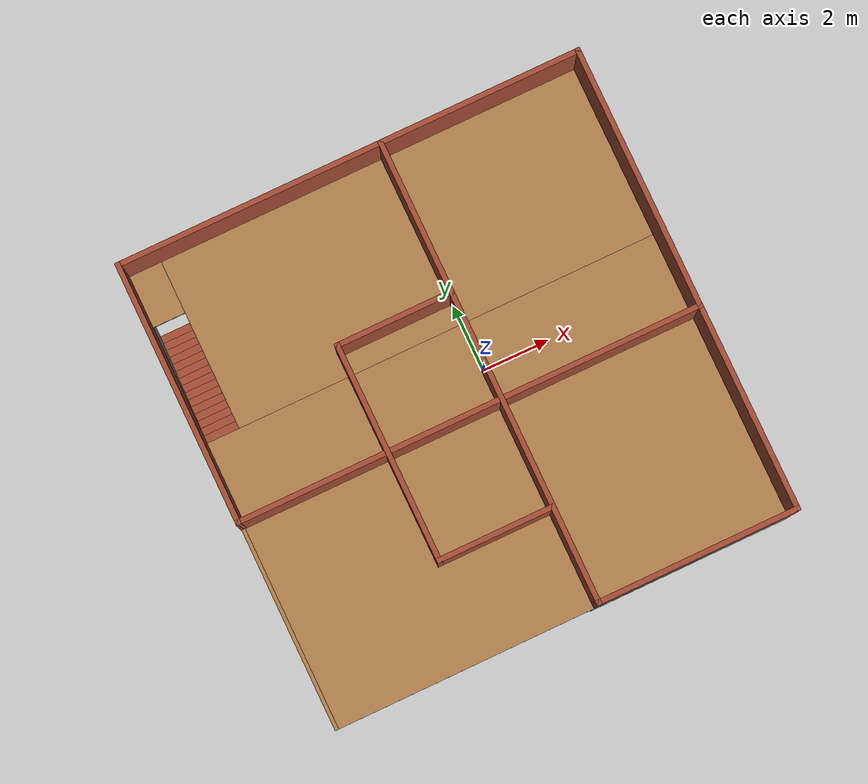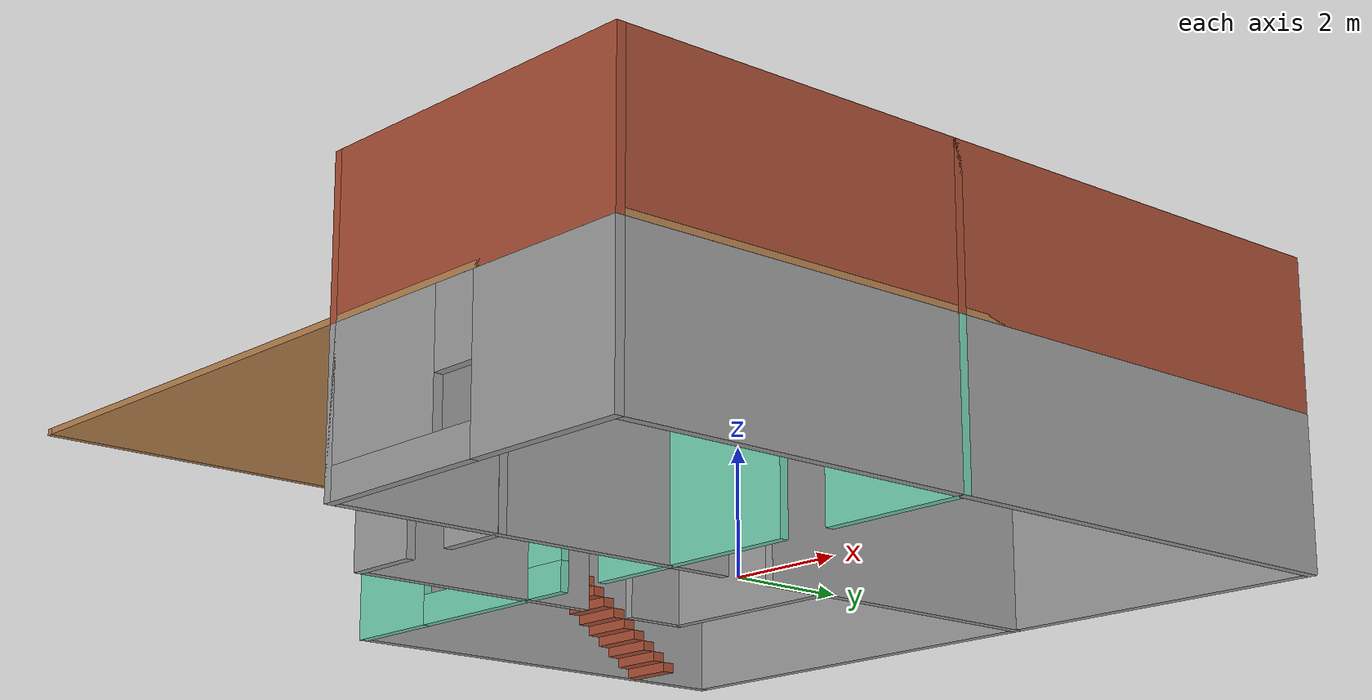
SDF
<?xml version='1.0'?>
<sdf version='1.6'>
  <model name='Robot_house'>
    <pose frame=''>-1.05504 -0.480919 0 0 -0 0</pose>
    <link name='Floor_3'>
      <pose frame=''>3.8e-05 -8.1e-05 2.5 0 -0 0</pose>
      <visual name='Floor_3_Visual_0'>
        <pose frame=''>-6.8208 0 0.05 0 -0 0</pose>
        <geometry>
          <box>
            <size>0.108402 13.75 0.1</size>
          </box>
        </geometry>
        <material>
          <script>
            <uri>file://media/materials/scripts/gazebo.material</uri>
            <name>Gazebo/Wood</name>
          </script>
          <ambient>1 1 1 1</ambient>
        </material>
      </visual>
      <collision name='Floor_3_Collision_0'>
        <geometry>
          <box>
            <size>0.108402 13.75 0.1</size>
          </box>
        </geometry>
        <pose frame=''>-6.8208 0 0.05 0 -0 0</pose>
      </collision>
      <visual name='Floor_3_Visual_1'>
        <pose frame=''>0.054201 -2.59933 0.05 0 -0 0</pose>
        <geometry>
          <box>
            <size>13.6416 8.55134 0.1</size>
          </box>
        </geometry>
        <material>
          <script>
            <uri>file://media/materials/scripts/gazebo.material</uri>
            <name>Gazebo/Wood</name>
          </script>
          <ambient>1 1 1 1</ambient>
        </material>
      </visual>
      <collision name='Floor_3_Collision_1'>
        <geometry>
          <box>
            <size>13.6416 8.55134 0.1</size>
          </box>
        </geometry>
        <pose frame=''>0.054201 -2.59933 0.05 0 -0 0</pose>
      </collision>
      <visual name='Floor_3_Visual_2'>
        <pose frame=''>0.554201 4.27567 0.05 0 -0 0</pose>
        <geometry>
          <box>
            <size>12.6416 5.19865 0.1</size>
          </box>
        </geometry>
        <material>
          <script>
            <uri>file://media/materials/scripts/gazebo.material</uri>
            <name>Gazebo/Wood</name>
          </script>
          <ambient>1 1 1 1</ambient>
        </material>
      </visual>
      <collision name='Floor_3_Collision_2'>
        <geometry>
          <box>
            <size>12.6416 5.19865 0.1</size>
          </box>
        </geometry>
        <pose frame=''>0.554201 4.27567 0.05 0 -0 0</pose>
      </collision>
      <visual name='Floor_3_Visual_3'>
        <pose frame=''>-6.2666 6.02567 0.05 0 -0 0</pose>
        <geometry>
          <box>
            <size>1 1.69866 0.1</size>
          </box>
        </geometry>
        <material>
          <script>
            <uri>file://media/materials/scripts/gazebo.material</uri>
            <name>Gazebo/Wood</name>
          </script>
          <ambient>1 1 1 1</ambient>
        </material>
      </visual>
      <collision name='Floor_3_Collision_3'>
        <geometry>
          <box>
            <size>1 1.69866 0.1</size>
          </box>
        </geometry>
        <pose frame=''>-6.2666 6.02567 0.05 0 -0 0</pose>
      </collision>
    </link>
    <link name='Stairs_1'>
      <visual name='Stairs_1_Visual_0'>
        <pose frame=''>-6.26656 5.0596 0.083333 0 -0 0</pose>
        <geometry>
          <box>
            <size>1 0.233333 0.166667</size>
          </box>
        </geometry>
        <material>
          <script>
            <uri>file://media/materials/scripts/gazebo.material</uri>
            <name>Gazebo/Bricks</name>
          </script>
          <ambient>1 1 1 1</ambient>
        </material>
      </visual>
      <collision name='Stairs_1_Collision_0'>
        <geometry>
          <box>
            <size>1 0.233333 0.166667</size>
          </box>
        </geometry>
        <pose frame=''>-6.26656 5.0596 0.083333 0 -0 0</pose>
      </collision>
      <visual name='Stairs_1_Visual_1'>
        <pose frame=''>-6.26656 4.82626 0.25 0 -0 0</pose>
        <geometry>
          <box>
            <size>1 0.233333 0.166667</size>
          </box>
        </geometry>
        <material>
          <script>
            <uri>file://media/materials/scripts/gazebo.material</uri>
            <name>Gazebo/Bricks</name>
          </script>
          <ambient>1 1 1 1</ambient>
        </material>
      </visual>
      <collision name='Stairs_1_Collision_1'>
        <geometry>
          <box>
            <size>1 0.233333 0.166667</size>
          </box>
        </geometry>
        <pose frame=''>-6.26656 4.82626 0.25 0 -0 0</pose>
      </collision>
      <visual name='Stairs_1_Visual_2'>
        <pose frame=''>-6.26656 4.59293 0.416667 0 -0 0</pose>
        <geometry>
          <box>
            <size>1 0.233333 0.166667</size>
          </box>
        </geometry>
        <material>
          <script>
            <uri>file://media/materials/scripts/gazebo.material</uri>
            <name>Gazebo/Bricks</name>
          </script>
          <ambient>1 1 1 1</ambient>
        </material>
      </visual>
      <collision name='Stairs_1_Collision_2'>
        <geometry>
          <box>
            <size>1 0.233333 0.166667</size>
          </box>
        </geometry>
        <pose frame=''>-6.26656 4.59293 0.416667 0 -0 0</pose>
      </collision>
      <visual name='Stairs_1_Visual_3'>
        <pose frame=''>-6.26656 4.3596 0.583333 0 -0 0</pose>
        <geometry>
          <box>
            <size>1 0.233333 0.166667</size>
          </box>
        </geometry>
        <material>
          <script>
            <uri>file://media/materials/scripts/gazebo.material</uri>
            <name>Gazebo/Bricks</name>
          </script>
          <ambient>1 1 1 1</ambient>
        </material>
      </visual>
      <collision name='Stairs_1_Collision_3'>
        <geometry>
          <box>
            <size>1 0.233333 0.166667</size>
          </box>
        </geometry>
        <pose frame=''>-6.26656 4.3596 0.583333 0 -0 0</pose>
      </collision>
      <visual name='Stairs_1_Visual_4'>
        <pose frame=''>-6.26656 4.12626 0.75 0 -0 0</pose>
        <geometry>
          <box>
            <size>1 0.233333 0.166667</size>
          </box>
        </geometry>
        <material>
          <script>
            <uri>file://media/materials/scripts/gazebo.material</uri>
            <name>Gazebo/Bricks</name>
          </script>
          <ambient>1 1 1 1</ambient>
        </material>
      </visual>
      <collision name='Stairs_1_Collision_4'>
        <geometry>
          <box>
            <size>1 0.233333 0.166667</size>
          </box>
        </geometry>
        <pose frame=''>-6.26656 4.12626 0.75 0 -0 0</pose>
      </collision>
      <visual name='Stairs_1_Visual_5'>
        <pose frame=''>-6.26656 3.89293 0.916667 0 -0 0</pose>
        <geometry>
          <box>
            <size>1 0.233333 0.166667</size>
          </box>
        </geometry>
        <material>
          <script>
            <uri>file://media/materials/scripts/gazebo.material</uri>
            <name>Gazebo/Bricks</name>
          </script>
          <ambient>1 1 1 1</ambient>
        </material>
      </visual>
      <collision name='Stairs_1_Collision_5'>
        <geometry>
          <box>
            <size>1 0.233333 0.166667</size>
          </box>
        </geometry>
        <pose frame=''>-6.26656 3.89293 0.916667 0 -0 0</pose>
      </collision>
      <visual name='Stairs_1_Visual_6'>
        <pose frame=''>-6.26656 3.6596 1.08333 0 -0 0</pose>
        <geometry>
          <box>
            <size>1 0.233333 0.166667</size>
          </box>
        </geometry>
        <material>
          <script>
            <uri>file://media/materials/scripts/gazebo.material</uri>
            <name>Gazebo/Bricks</name>
          </script>
          <ambient>1 1 1 1</ambient>
        </material>
      </visual>
      <collision name='Stairs_1_Collision_6'>
        <geometry>
          <box>
            <size>1 0.233333 0.166667</size>
          </box>
        </geometry>
        <pose frame=''>-6.26656 3.6596 1.08333 0 -0 0</pose>
      </collision>
      <visual name='Stairs_1_Visual_7'>
        <pose frame=''>-6.26656 3.42626 1.25 0 -0 0</pose>
        <geometry>
          <box>
            <size>1 0.233333 0.166667</size>
          </box>
        </geometry>
        <material>
          <script>
            <uri>file://media/materials/scripts/gazebo.material</uri>
            <name>Gazebo/Bricks</name>
          </script>
          <ambient>1 1 1 1</ambient>
        </material>
      </visual>
      <collision name='Stairs_1_Collision_7'>
        <geometry>
          <box>
            <size>1 0.233333 0.166667</size>
          </box>
        </geometry>
        <pose frame=''>-6.26656 3.42626 1.25 0 -0 0</pose>
      </collision>
      <visual name='Stairs_1_Visual_8'>
        <pose frame=''>-6.26656 3.19293 1.41667 0 -0 0</pose>
        <geometry>
          <box>
            <size>1 0.233333 0.166667</size>
          </box>
        </geometry>
        <material>
          <script>
            <uri>file://media/materials/scripts/gazebo.material</uri>
            <name>Gazebo/Bricks</name>
          </script>
          <ambient>1 1 1 1</ambient>
        </material>
      </visual>
      <collision name='Stairs_1_Collision_8'>
        <geometry>
          <box>
            <size>1 0.233333 0.166667</size>
          </box>
        </geometry>
        <pose frame=''>-6.26656 3.19293 1.41667 0 -0 0</pose>
      </collision>
      <visual name='Stairs_1_Visual_9'>
        <pose frame=''>-6.26656 2.9596 1.58333 0 -0 0</pose>
        <geometry>
          <box>
            <size>1 0.233333 0.166667</size>
          </box>
        </geometry>
        <material>
          <script>
            <uri>file://media/materials/scripts/gazebo.material</uri>
            <name>Gazebo/Bricks</name>
          </script>
          <ambient>1 1 1 1</ambient>
        </material>
      </visual>
      <collision name='Stairs_1_Collision_9'>
        <geometry>
          <box>
            <size>1 0.233333 0.166667</size>
          </box>
        </geometry>
        <pose frame=''>-6.26656 2.9596 1.58333 0 -0 0</pose>
      </collision>
      <visual name='Stairs_1_Visual_10'>
        <pose frame=''>-6.26656 2.72626 1.75 0 -0 0</pose>
        <geometry>
          <box>
            <size>1 0.233333 0.166667</size>
          </box>
        </geometry>
        <material>
          <script>
            <uri>file://media/materials/scripts/gazebo.material</uri>
            <name>Gazebo/Bricks</name>
          </script>
          <ambient>1 1 1 1</ambient>
        </material>
      </visual>
      <collision name='Stairs_1_Collision_10'>
        <geometry>
          <box>
            <size>1 0.233333 0.166667</size>
          </box>
        </geometry>
        <pose frame=''>-6.26656 2.72626 1.75 0 -0 0</pose>
      </collision>
      <visual name='Stairs_1_Visual_11'>
        <pose frame=''>-6.26656 2.49293 1.91667 0 -0 0</pose>
        <geometry>
          <box>
            <size>1 0.233333 0.166667</size>
          </box>
        </geometry>
        <material>
          <script>
            <uri>file://media/materials/scripts/gazebo.material</uri>
            <name>Gazebo/Bricks</name>
          </script>
          <ambient>1 1 1 1</ambient>
        </material>
      </visual>
      <collision name='Stairs_1_Collision_11'>
        <geometry>
          <box>
            <size>1 0.233333 0.166667</size>
          </box>
        </geometry>
        <pose frame=''>-6.26656 2.49293 1.91667 0 -0 0</pose>
      </collision>
      <visual name='Stairs_1_Visual_12'>
        <pose frame=''>-6.26656 2.2596 2.08333 0 -0 0</pose>
        <geometry>
          <box>
            <size>1 0.233333 0.166667</size>
          </box>
        </geometry>
        <material>
          <script>
            <uri>file://media/materials/scripts/gazebo.material</uri>
            <name>Gazebo/Bricks</name>
          </script>
          <ambient>1 1 1 1</ambient>
        </material>
      </visual>
      <collision name='Stairs_1_Collision_12'>
        <geometry>
          <box>
            <size>1 0.233333 0.166667</size>
          </box>
        </geometry>
        <pose frame=''>-6.26656 2.2596 2.08333 0 -0 0</pose>
      </collision>
      <visual name='Stairs_1_Visual_13'>
        <pose frame=''>-6.26656 2.02626 2.25 0 -0 0</pose>
        <geometry>
          <box>
            <size>1 0.233333 0.166667</size>
          </box>
        </geometry>
        <material>
          <script>
            <uri>file://media/materials/scripts/gazebo.material</uri>
            <name>Gazebo/Bricks</name>
          </script>
          <ambient>1 1 1 1</ambient>
        </material>
      </visual>
      <collision name='Stairs_1_Collision_13'>
        <geometry>
          <box>
            <size>1 0.233333 0.166667</size>
          </box>
        </geometry>
        <pose frame=''>-6.26656 2.02626 2.25 0 -0 0</pose>
      </collision>
      <visual name='Stairs_1_Visual_14'>
        <pose frame=''>-6.26656 1.79293 2.41667 0 -0 0</pose>
        <geometry>
          <box>
            <size>1 0.233333 0.166667</size>
          </box>
        </geometry>
        <material>
          <script>
            <uri>file://media/materials/scripts/gazebo.material</uri>
            <name>Gazebo/Bricks</name>
          </script>
          <ambient>1 1 1 1</ambient>
        </material>
      </visual>
      <collision name='Stairs_1_Collision_14'>
        <geometry>
          <box>
            <size>1 0.233333 0.166667</size>
          </box>
        </geometry>
        <pose frame=''>-6.26656 1.79293 2.41667 0 -0 0</pose>
      </collision>
    </link>
    <link name='Wall_0'>
      <collision name='Wall_0_Collision'>
        <geometry>
          <box>
            <size>13.75 0.15 2.5</size>
          </box>
        </geometry>
        <pose frame=''>0 0 1.25 0 -0 0</pose>
      </collision>
      <visual name='Wall_0_Visual'>
        <pose frame=''>0 0 1.25 0 -0 0</pose>
        <geometry>
          <box>
            <size>13.75 0.15 2.5</size>
          </box>
        </geometry>
        <material>
          <script>
            <uri>file://media/materials/scripts/gazebo.material</uri>
            <name>Gazebo/Grey</name>
          </script>
          <ambient>1 1 1 1</ambient>
        </material>
      </visual>
      <pose frame=''>-3.8e-05 6.80008 0 0 -0 0</pose>
    </link>
    <link name='Wall_1'>
      <collision name='Wall_1_Collision'>
        <geometry>
          <box>
            <size>13.75 0.15 2.5</size>
          </box>
        </geometry>
        <pose frame=''>0 0 1.25 0 -0 0</pose>
      </collision>
      <visual name='Wall_1_Visual'>
        <pose frame=''>0 0 1.25 0 -0 0</pose>
        <geometry>
          <box>
            <size>13.75 0.15 2.5</size>
          </box>
        </geometry>
        <material>
          <script>
            <uri>file://media/materials/scripts/gazebo.material</uri>
            <name>Gazebo/Grey</name>
          </script>
          <ambient>1 1 1 1</ambient>
        </material>
      </visual>
      <pose frame=''>6.79996 8.1e-05 0 0 0 -1.5708</pose>
    </link>
    <link name='Wall_10'>
      <pose frame=''>-0.721411 -3.98743 0 0 -0 0</pose>
      <visual name='Wall_10_Visual_0'>
        <pose frame=''>-1.08443 0 1.25 0 -0 0</pose>
        <geometry>
          <box>
            <size>1.33115 0.15 2.5</size>
          </box>
        </geometry>
        <material>
          <script>
            <uri>file://media/materials/scripts/gazebo.material</uri>
            <name>Gazebo/Grey</name>
          </script>
          <ambient>1 1 1 1</ambient>
        </material>
      </visual>
      <collision name='Wall_10_Collision_0'>
        <geometry>
          <box>
            <size>1.33115 0.15 2.5</size>
          </box>
        </geometry>
        <pose frame=''>-1.08443 0 1.25 0 -0 0</pose>
      </collision>
      <visual name='Wall_10_Visual_1'>
        <pose frame=''>1.11557 0 1.25 0 -0 0</pose>
        <geometry>
          <box>
            <size>1.26885 0.15 2.5</size>
          </box>
        </geometry>
        <material>
          <script>
            <uri>file://media/materials/scripts/gazebo.material</uri>
            <name>Gazebo/Grey</name>
          </script>
          <ambient>1 1 1 1</ambient>
        </material>
      </visual>
      <collision name='Wall_10_Collision_1'>
        <geometry>
          <box>
            <size>1.26885 0.15 2.5</size>
          </box>
        </geometry>
        <pose frame=''>1.11557 0 1.25 0 -0 0</pose>
      </collision>
      <visual name='Wall_10_Visual_2'>
        <pose frame=''>0.031147 0 2.25 0 -0 0</pose>
        <geometry>
          <box>
            <size>0.9 0.15 0.5</size>
          </box>
        </geometry>
        <material>
          <script>
            <uri>file://media/materials/scripts/gazebo.material</uri>
            <name>Gazebo/Grey</name>
          </script>
          <ambient>1 1 1 1</ambient>
        </material>
      </visual>
      <collision name='Wall_10_Collision_2'>
        <geometry>
          <box>
            <size>0.9 0.15 0.5</size>
          </box>
        </geometry>
        <pose frame=''>0.031147 0 2.25 0 -0 0</pose>
      </collision>
    </link>
    <link name='Wall_2'>
      <pose frame=''>3.87496 -6.79992 0 0 -0 3.14159</pose>
      <visual name='Wall_2_Visual_0'>
        <pose frame=''>-1.60068 0 1.25 0 -0 0</pose>
        <geometry>
          <box>
            <size>2.79864 0.15 2.5</size>
          </box>
        </geometry>
        <material>
          <script>
            <uri>file://media/materials/scripts/gazebo.material</uri>
            <name>Gazebo/Grey</name>
          </script>
          <ambient>1 1 1 1</ambient>
        </material>
      </visual>
      <collision name='Wall_2_Collision_0'>
        <geometry>
          <box>
            <size>2.79864 0.15 2.5</size>
          </box>
        </geometry>
        <pose frame=''>-1.60068 0 1.25 0 -0 0</pose>
      </collision>
      <visual name='Wall_2_Visual_1'>
        <pose frame=''>1.39932 0 0.25 0 -0 0</pose>
        <geometry>
          <box>
            <size>3.20136 0.15 0.5</size>
          </box>
        </geometry>
        <material>
          <script>
            <uri>file://media/materials/scripts/gazebo.material</uri>
            <name>Gazebo/Grey</name>
          </script>
          <ambient>1 1 1 1</ambient>
        </material>
      </visual>
      <collision name='Wall_2_Collision_1'>
        <geometry>
          <box>
            <size>3.20136 0.15 0.5</size>
          </box>
        </geometry>
        <pose frame=''>1.39932 0 0.25 0 -0 0</pose>
      </collision>
      <visual name='Wall_2_Visual_2'>
        <pose frame=''>1.79932 0 1.5 0 -0 0</pose>
        <geometry>
          <box>
            <size>2.40136 0.15 2</size>
          </box>
        </geometry>
        <material>
          <script>
            <uri>file://media/materials/scripts/gazebo.material</uri>
            <name>Gazebo/Grey</name>
          </script>
          <ambient>1 1 1 1</ambient>
        </material>
      </visual>
      <collision name='Wall_2_Collision_2'>
        <geometry>
          <box>
            <size>2.40136 0.15 2</size>
          </box>
        </geometry>
        <pose frame=''>1.79932 0 1.5 0 -0 0</pose>
      </collision>
      <visual name='Wall_2_Visual_3'>
        <pose frame=''>0.198644 0 1.9 0 -0 0</pose>
        <geometry>
          <box>
            <size>0.8 0.15 1.2</size>
          </box>
        </geometry>
        <material>
          <script>
            <uri>file://media/materials/scripts/gazebo.material</uri>
            <name>Gazebo/Grey</name>
          </script>
          <ambient>1 1 1 1</ambient>
        </material>
      </visual>
      <collision name='Wall_2_Collision_3'>
        <geometry>
          <box>
            <size>0.8 0.15 1.2</size>
          </box>
        </geometry>
        <pose frame=''>0.198644 0 1.9 0 -0 0</pose>
      </collision>
    </link>
    <link name='Wall_3'>
      <pose frame=''>0.949962 8.1e-05 0 0 -0 1.5708</pose>
      <visual name='Wall_3_Visual_0'>
        <pose frame=''>-3.28436 0 1.25 0 -0 0</pose>
        <geometry>
          <box>
            <size>7.18127 0.15 2.5</size>
          </box>
        </geometry>
        <material>
          <script>
            <uri>file://media/materials/scripts/gazebo.material</uri>
            <name>Gazebo/Grey</name>
          </script>
          <ambient>1 1 1 1</ambient>
        </material>
      </visual>
      <collision name='Wall_3_Collision_0'>
        <geometry>
          <box>
            <size>7.18127 0.15 2.5</size>
          </box>
        </geometry>
        <pose frame=''>-3.28436 0 1.25 0 -0 0</pose>
      </collision>
      <visual name='Wall_3_Visual_1'>
        <pose frame=''>4.04064 0 1.25 0 -0 0</pose>
        <geometry>
          <box>
            <size>5.66873 0.15 2.5</size>
          </box>
        </geometry>
        <material>
          <script>
            <uri>file://media/materials/scripts/gazebo.material</uri>
            <name>Gazebo/Grey</name>
          </script>
          <ambient>1 1 1 1</ambient>
        </material>
      </visual>
      <collision name='Wall_3_Collision_1'>
        <geometry>
          <box>
            <size>5.66873 0.15 2.5</size>
          </box>
        </geometry>
        <pose frame=''>4.04064 0 1.25 0 -0 0</pose>
      </collision>
      <visual name='Wall_3_Visual_2'>
        <pose frame=''>0.756273 0 2.25 0 -0 0</pose>
        <geometry>
          <box>
            <size>0.9 0.15 0.5</size>
          </box>
        </geometry>
        <material>
          <script>
            <uri>file://media/materials/scripts/gazebo.material</uri>
            <name>Gazebo/Grey</name>
          </script>
          <ambient>1 1 1 1</ambient>
        </material>
      </visual>
      <collision name='Wall_3_Collision_2'>
        <geometry>
          <box>
            <size>0.9 0.15 0.5</size>
          </box>
        </geometry>
        <pose frame=''>0.756273 0 2.25 0 -0 0</pose>
      </collision>
    </link>
    <link name='Wall_39'>
      <collision name='Wall_39_Collision'>
        <geometry>
          <box>
            <size>13.75 0.15 2.5</size>
          </box>
        </geometry>
        <pose frame=''>0 0 1.25 0 -0 0</pose>
      </collision>
      <visual name='Wall_39_Visual'>
        <pose frame=''>0 0 1.25 0 -0 0</pose>
        <geometry>
          <box>
            <size>13.75 0.15 2.5</size>
          </box>
        </geometry>
        <material>
          <script>
            <uri>file://media/materials/scripts/gazebo.material</uri>
            <name>Gazebo/Bricks</name>
          </script>
          <ambient>1 1 1 1</ambient>
        </material>
      </visual>
      <pose frame=''>3.8e-05 6.79992 2.5 0 -0 0</pose>
    </link>
    <link name='Wall_40'>
      <collision name='Wall_40_Collision'>
        <geometry>
          <box>
            <size>13.75 0.15 2.5</size>
          </box>
        </geometry>
        <pose frame=''>0 0 1.25 0 -0 0</pose>
      </collision>
      <visual name='Wall_40_Visual'>
        <pose frame=''>0 0 1.25 0 -0 0</pose>
        <geometry>
          <box>
            <size>13.75 0.15 2.5</size>
          </box>
        </geometry>
        <material>
          <script>
            <uri>file://media/materials/scripts/gazebo.material</uri>
            <name>Gazebo/Bricks</name>
          </script>
          <ambient>1 1 1 1</ambient>
        </material>
      </visual>
      <pose frame=''>6.80004 -8.1e-05 2.5 0 0 -1.5708</pose>
    </link>
    <link name='Wall_41'>
      <collision name='Wall_41_Collision'>
        <geometry>
          <box>
            <size>6 0.15 2.5</size>
          </box>
        </geometry>
        <pose frame=''>0 0 1.25 0 -0 0</pose>
      </collision>
      <visual name='Wall_41_Visual'>
        <pose frame=''>0 0 1.25 0 -0 0</pose>
        <geometry>
          <box>
            <size>6 0.15 2.5</size>
          </box>
        </geometry>
        <material>
          <script>
            <uri>file://media/materials/scripts/gazebo.material</uri>
            <name>Gazebo/Bricks</name>
          </script>
          <ambient>1 1 1 1</ambient>
        </material>
      </visual>
      <pose frame=''>3.87504 -6.80008 2.5 0 -0 3.14159</pose>
    </link>
    <link name='Wall_42'>
      <collision name='Wall_42_Collision'>
        <geometry>
          <box>
            <size>13.75 0.15 2.5</size>
          </box>
        </geometry>
        <pose frame=''>0 0 1.25 0 -0 0</pose>
      </collision>
      <visual name='Wall_42_Visual'>
        <pose frame=''>0 0 1.25 0 -0 0</pose>
        <geometry>
          <box>
            <size>13.75 0.15 2.5</size>
          </box>
        </geometry>
        <material>
          <script>
            <uri>file://media/materials/scripts/gazebo.material</uri>
            <name>Gazebo/Bricks</name>
          </script>
          <ambient>1 1 1 1</ambient>
        </material>
      </visual>
      <pose frame=''>0.950038 -8.1e-05 2.5 0 -0 1.5708</pose>
    </link>
    <link name='Wall_43'>
      <collision name='Wall_43_Collision'>
        <geometry>
          <box>
            <size>7.75 0.15 2.5</size>
          </box>
        </geometry>
        <pose frame=''>0 0 1.25 0 -0 0</pose>
      </collision>
      <visual name='Wall_43_Visual'>
        <pose frame=''>0 0 1.25 0 -0 0</pose>
        <geometry>
          <box>
            <size>7.75 0.15 2.5</size>
          </box>
        </geometry>
        <material>
          <script>
            <uri>file://media/materials/scripts/gazebo.material</uri>
            <name>Gazebo/Bricks</name>
          </script>
          <ambient>1 1 1 1</ambient>
        </material>
      </visual>
      <pose frame=''>-6.79996 2.99992 2.5 0 0 -1.5708</pose>
    </link>
    <link name='Wall_44'>
      <collision name='Wall_44_Collision'>
        <geometry>
          <box>
            <size>13.75 0.15 2.5</size>
          </box>
        </geometry>
        <pose frame=''>0 0 1.25 0 -0 0</pose>
      </collision>
      <visual name='Wall_44_Visual'>
        <pose frame=''>0 0 1.25 0 -0 0</pose>
        <geometry>
          <box>
            <size>13.75 0.15 2.5</size>
          </box>
        </geometry>
        <material>
          <script>
            <uri>file://media/materials/scripts/gazebo.material</uri>
            <name>Gazebo/Bricks</name>
          </script>
          <ambient>0.996078 0.47451 0.0196078 1</ambient>
        </material>
      </visual>
      <pose frame=''>3.8e-05 -0.800081 2.5 0 -0 0</pose>
    </link>
    <link name='Wall_45'>
      <collision name='Wall_45_Collision'>
        <geometry>
          <box>
            <size>3.5 0.15 2.5</size>
          </box>
        </geometry>
        <pose frame=''>0 0 1.25 0 -0 0</pose>
      </collision>
      <visual name='Wall_45_Visual'>
        <pose frame=''>0 0 1.25 0 -0 0</pose>
        <geometry>
          <box>
            <size>3.5 0.15 2.5</size>
          </box>
        </geometry>
        <material>
          <script>
            <uri>file://media/materials/scripts/gazebo.material</uri>
            <name>Gazebo/Bricks</name>
          </script>
          <ambient>1 1 1 1</ambient>
        </material>
      </visual>
      <pose frame=''>-0.735962 2.34892 2.5 0 -0 3.14159</pose>
    </link>
    <link name='Wall_46'>
      <collision name='Wall_46_Collision'>
        <geometry>
          <box>
            <size>6.48648 0.15 2.5</size>
          </box>
        </geometry>
        <pose frame=''>0 0 1.25 0 -0 0</pose>
      </collision>
      <visual name='Wall_46_Visual'>
        <pose frame=''>0 0 1.25 0 -0 0</pose>
        <geometry>
          <box>
            <size>6.48648 0.15 2.5</size>
          </box>
        </geometry>
        <material>
          <script>
            <uri>file://media/materials/scripts/gazebo.material</uri>
            <name>Gazebo/Bricks</name>
          </script>
          <ambient>1 1 1 1</ambient>
        </material>
      </visual>
      <pose frame=''>-2.40346 -0.819081 2.5 0 0 -1.56843</pose>
    </link>
    <link name='Wall_47'>
      <collision name='Wall_47_Collision'>
        <geometry>
          <box>
            <size>3.5 0.15 2.5</size>
          </box>
        </geometry>
        <pose frame=''>0 0 1.25 0 -0 0</pose>
      </collision>
      <visual name='Wall_47_Visual'>
        <pose frame=''>0 0 1.25 0 -0 0</pose>
        <geometry>
          <box>
            <size>3.5 0.15 2.5</size>
          </box>
        </geometry>
        <material>
          <script>
            <uri>file://media/materials/scripts/gazebo.material</uri>
            <name>Gazebo/Bricks</name>
          </script>
          <ambient>1 1 1 1</ambient>
        </material>
      </visual>
      <pose frame=''>-0.720962 -3.98708 2.5 0 -0 0</pose>
    </link>
    <link name='Wall_5'>
      <collision name='Wall_5_Collision'>
        <geometry>
          <box>
            <size>7.75 0.15 2.5</size>
          </box>
        </geometry>
        <pose frame=''>0 0 1.25 0 -0 0</pose>
      </collision>
      <visual name='Wall_5_Visual'>
        <pose frame=''>0 0 1.25 0 -0 0</pose>
        <geometry>
          <box>
            <size>7.75 0.15 2.5</size>
          </box>
        </geometry>
        <material>
          <script>
            <uri>file://media/materials/scripts/gazebo.material</uri>
            <name>Gazebo/Grey</name>
          </script>
          <ambient>1 1 1 1</ambient>
        </material>
      </visual>
      <pose frame=''>-6.8 3 0 0 0 -1.57079</pose>
    </link>
    <link name='Wall_6'>
      <pose frame=''>3.8e-05 -0.800081 0 0 -0 0</pose>
      <visual name='Wall_6_Visual_0'>
        <pose frame=''>-5.97346 0 1.25 0 -0 0</pose>
        <geometry>
          <box>
            <size>1.80308 0.15 2.5</size>
          </box>
        </geometry>
        <material>
          <script>
            <uri>file://media/materials/scripts/gazebo.material</uri>
            <name>Gazebo/Grey</name>
          </script>
          <ambient>0.435294 0.796078 0.67451 1</ambient>
        </material>
      </visual>
      <collision name='Wall_6_Collision_0'>
        <geometry>
          <box>
            <size>1.80308 0.15 2.5</size>
          </box>
        </geometry>
        <pose frame=''>-5.97346 0 1.25 0 -0 0</pose>
      </collision>
      <visual name='Wall_6_Visual_1'>
        <pose frame=''>1.38655 0 1.25 0 -0 0</pose>
        <geometry>
          <box>
            <size>4.00116 0.15 2.5</size>
          </box>
        </geometry>
        <material>
          <script>
            <uri>file://media/materials/scripts/gazebo.material</uri>
            <name>Gazebo/Grey</name>
          </script>
          <ambient>0.435294 0.796078 0.67451 1</ambient>
        </material>
      </visual>
      <collision name='Wall_6_Collision_1'>
        <geometry>
          <box>
            <size>4.00116 0.15 2.5</size>
          </box>
        </geometry>
        <pose frame=''>1.38655 0 1.25 0 -0 0</pose>
      </collision>
      <visual name='Wall_6_Visual_2'>
        <pose frame=''>5.58106 0 1.25 0 -0 0</pose>
        <geometry>
          <box>
            <size>2.58787 0.15 2.5</size>
          </box>
        </geometry>
        <material>
          <script>
            <uri>file://media/materials/scripts/gazebo.material</uri>
            <name>Gazebo/Grey</name>
          </script>
          <ambient>0.435294 0.796078 0.67451 1</ambient>
        </material>
      </visual>
      <collision name='Wall_6_Collision_2'>
        <geometry>
          <box>
            <size>2.58787 0.15 2.5</size>
          </box>
        </geometry>
        <pose frame=''>5.58106 0 1.25 0 -0 0</pose>
      </collision>
      <visual name='Wall_6_Visual_3'>
        <pose frame=''>-3.29298 0 0.25 0 -0 0</pose>
        <geometry>
          <box>
            <size>3.55789 0.15 0.5</size>
          </box>
        </geometry>
        <material>
          <script>
            <uri>file://media/materials/scripts/gazebo.material</uri>
            <name>Gazebo/Grey</name>
          </script>
          <ambient>0.435294 0.796078 0.67451 1</ambient>
        </material>
      </visual>
      <collision name='Wall_6_Collision_3'>
        <geometry>
          <box>
            <size>3.55789 0.15 0.5</size>
          </box>
        </geometry>
        <pose frame=''>-3.29298 0 0.25 0 -0 0</pose>
      </collision>
      <visual name='Wall_6_Visual_4'>
        <pose frame=''>-2.89298 0 1.5 0 -0 0</pose>
        <geometry>
          <box>
            <size>2.75788 0.15 2</size>
          </box>
        </geometry>
        <material>
          <script>
            <uri>file://media/materials/scripts/gazebo.material</uri>
            <name>Gazebo/Grey</name>
          </script>
          <ambient>0.435294 0.796078 0.67451 1</ambient>
        </material>
      </visual>
      <collision name='Wall_6_Collision_4'>
        <geometry>
          <box>
            <size>2.75788 0.15 2</size>
          </box>
        </geometry>
        <pose frame=''>-2.89298 0 1.5 0 -0 0</pose>
      </collision>
      <visual name='Wall_6_Visual_5'>
        <pose frame=''>-4.67192 0 1.9 0 -0 0</pose>
        <geometry>
          <box>
            <size>0.8 0.15 1.2</size>
          </box>
        </geometry>
        <material>
          <script>
            <uri>file://media/materials/scripts/gazebo.material</uri>
            <name>Gazebo/Grey</name>
          </script>
          <ambient>0.435294 0.796078 0.67451 1</ambient>
        </material>
      </visual>
      <collision name='Wall_6_Collision_5'>
        <geometry>
          <box>
            <size>0.8 0.15 1.2</size>
          </box>
        </geometry>
        <pose frame=''>-4.67192 0 1.9 0 -0 0</pose>
      </collision>
      <visual name='Wall_6_Visual_6'>
        <pose frame=''>3.83713 0 2.25 0 -0 0</pose>
        <geometry>
          <box>
            <size>0.9 0.15 0.5</size>
          </box>
        </geometry>
        <material>
          <script>
            <uri>file://media/materials/scripts/gazebo.material</uri>
            <name>Gazebo/Grey</name>
          </script>
          <ambient>0.435294 0.796078 0.67451 1</ambient>
        </material>
      </visual>
      <collision name='Wall_6_Collision_6'>
        <geometry>
          <box>
            <size>0.9 0.15 0.5</size>
          </box>
        </geometry>
        <pose frame=''>3.83713 0 2.25 0 -0 0</pose>
      </collision>
      <visual name='Wall_6_Visual_7'>
        <pose frame=''>-1.06404 0 2.25 0 -0 0</pose>
        <geometry>
          <box>
            <size>0.9 0.15 0.5</size>
          </box>
        </geometry>
        <material>
          <script>
            <uri>file://media/materials/scripts/gazebo.material</uri>
            <name>Gazebo/Grey</name>
          </script>
          <ambient>0.435294 0.796078 0.67451 1</ambient>
        </material>
      </visual>
      <collision name='Wall_6_Collision_7'>
        <geometry>
          <box>
            <size>0.9 0.15 0.5</size>
          </box>
        </geometry>
        <pose frame=''>-1.06404 0 2.25 0 -0 0</pose>
      </collision>
    </link>
    <link name='Wall_8'>
      <collision name='Wall_8_Collision'>
        <geometry>
          <box>
            <size>3.5 0.15 2.5</size>
          </box>
        </geometry>
        <pose frame=''>0 0 1.25 0 -0 0</pose>
      </collision>
      <visual name='Wall_8_Visual'>
        <pose frame=''>0 0 1.25 0 -0 0</pose>
        <geometry>
          <box>
            <size>3.5 0.15 2.5</size>
          </box>
        </geometry>
        <material>
          <script>
            <uri>file://media/materials/scripts/gazebo.material</uri>
            <name>Gazebo/Grey</name>
          </script>
          <ambient>1 1 1 1</ambient>
        </material>
      </visual>
      <pose frame=''>-0.736117 2.34938 0 0 -0 3.14159</pose>
    </link>
    <link name='Wall_9'>
      <pose frame=''>-2.40625 -0.816538 0 0 0 -1.56926</pose>
      <visual name='Wall_9_Visual_0'>
        <pose frame=''>-2.66207 0 1.25 0 -0 0</pose>
        <geometry>
          <box>
            <size>1.15771 0.15 2.5</size>
          </box>
        </geometry>
        <material>
          <script>
            <uri>file://media/materials/scripts/gazebo.material</uri>
            <name>Gazebo/Grey</name>
          </script>
          <ambient>1 1 1 1</ambient>
        </material>
      </visual>
      <collision name='Wall_9_Collision_0'>
        <geometry>
          <box>
            <size>1.15771 0.15 2.5</size>
          </box>
        </geometry>
        <pose frame=''>-2.66207 0 1.25 0 -0 0</pose>
      </collision>
      <visual name='Wall_9_Visual_1'>
        <pose frame=''>1.02886 0 1.25 0 -0 0</pose>
        <geometry>
          <box>
            <size>4.42413 0.15 2.5</size>
          </box>
        </geometry>
        <material>
          <script>
            <uri>file://media/materials/scripts/gazebo.material</uri>
            <name>Gazebo/Grey</name>
          </script>
          <ambient>1 1 1 1</ambient>
        </material>
      </visual>
      <collision name='Wall_9_Collision_1'>
        <geometry>
          <box>
            <size>4.42413 0.15 2.5</size>
          </box>
        </geometry>
        <pose frame=''>1.02886 0 1.25 0 -0 0</pose>
      </collision>
      <visual name='Wall_9_Visual_2'>
        <pose frame=''>-1.63321 0 2.25 0 -0 0</pose>
        <geometry>
          <box>
            <size>0.9 0.15 0.5</size>
          </box>
        </geometry>
        <material>
          <script>
            <uri>file://media/materials/scripts/gazebo.material</uri>
            <name>Gazebo/Grey</name>
          </script>
          <ambient>1 1 1 1</ambient>
        </material>
      </visual>
      <collision name='Wall_9_Collision_2'>
        <geometry>
          <box>
            <size>0.9 0.15 0.5</size>
          </box>
        </geometry>
        <pose frame=''>-1.63321 0 2.25 0 -0 0</pose>
      </collision>
    </link>
    <static>1</static>
  </model>
</sdf>
